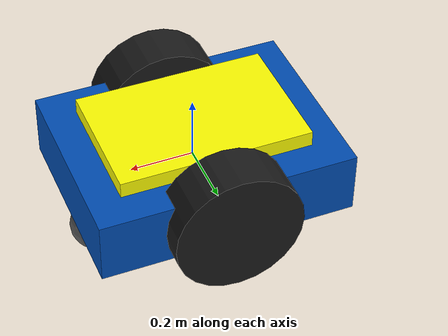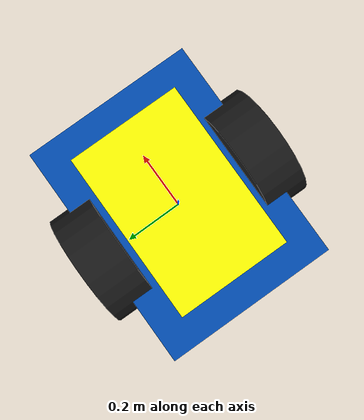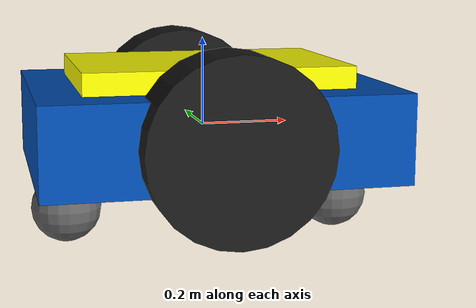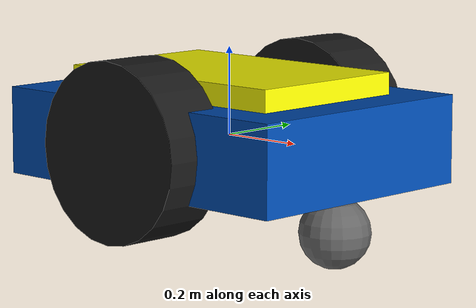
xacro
<?xml version="1.0"?>

<robot xmlns:xacro="http://www.ros.org/wiki/xacro" name="basicmicro_industrial_robot">

  <!-- Xacro arguments with industrial defaults -->
  <xacro:arg name="port" default="/dev/ttyACM0"/>
  <xacro:arg name="baud" default="115200"/>
  <xacro:arg name="address" default="128"/>
  <xacro:arg name="wheel_radius" default="0.2"/>
  <xacro:arg name="wheel_separation" default="0.6"/>
  <xacro:arg name="encoder_counts_per_rev" default="2000"/>
  <xacro:arg name="gear_ratio" default="10.0"/>
  <xacro:arg name="motion_strategy" default="speed_accel"/>
  <xacro:arg name="default_acceleration" default="2000"/>
  <xacro:arg name="buffer_depth" default="8"/>
  <xacro:arg name="encoder_type" default="incremental"/>
  <xacro:arg name="auto_home_on_startup" default="false"/>
  <xacro:arg name="position_limits_enabled" default="true"/>
  <xacro:arg name="max_speed" default="5.0"/>
  <xacro:arg name="max_acceleration" default="2000"/>

  <!-- Industrial Robot Physical Properties -->
  <xacro:property name="wheel_radius" value="$(arg wheel_radius)"/>
  <xacro:property name="wheel_separation" value="$(arg wheel_separation)"/>
  <xacro:property name="wheel_width" value="0.15"/>
  <xacro:property name="wheel_mass" value="5.0"/>

  <!-- Large industrial base platform -->
  <xacro:property name="base_length" value="0.8"/>
  <xacro:property name="base_width" value="0.6"/>
  <xacro:property name="base_height" value="0.2"/>
  <xacro:property name="base_mass" value="50.0"/>

  <!-- Heavy-duty caster wheels (2 for stability) -->
  <xacro:property name="caster_radius" value="0.08"/>
  <xacro:property name="caster_mass" value="2.0"/>

  <!-- Payload platform -->
  <xacro:property name="payload_length" value="0.6"/>
  <xacro:property name="payload_width" value="0.4"/>
  <xacro:property name="payload_height" value="0.05"/>
  <xacro:property name="payload_mass" value="5.0"/>

  <!-- Industrial Materials -->
  <material name="industrial_blue">
    <color rgba="0.0 0.3 0.7 1.0"/>
  </material>

  <material name="industrial_black">
    <color rgba="0.1 0.1 0.1 1.0"/>
  </material>

  <material name="industrial_gray">
    <color rgba="0.4 0.4 0.4 1.0"/>
  </material>

  <material name="industrial_yellow">
    <color rgba="1.0 1.0 0.0 1.0"/>
  </material>

  <!-- Base Link (Heavy-duty platform) -->
  <link name="base_link">
    <visual>
      <geometry>
        <box size="${base_length} ${base_width} ${base_height}"/>
      </geometry>
      <material name="industrial_blue"/>
    </visual>
    <collision>
      <geometry>
        <box size="${base_length} ${base_width} ${base_height}"/>
      </geometry>
    </collision>
    <inertial>
      <mass value="${base_mass}"/>
      <inertia ixx="${base_mass * (base_width*base_width + base_height*base_height) / 12}"
               iyy="${base_mass * (base_length*base_length + base_height*base_height) / 12}"
               izz="${base_mass * (base_length*base_length + base_width*base_width) / 12}"
               ixy="0" ixz="0" iyz="0"/>
    </inertial>
  </link>

  <!-- Payload Platform -->
  <link name="payload_platform">
    <visual>
      <geometry>
        <box size="${payload_length} ${payload_width} ${payload_height}"/>
      </geometry>
      <material name="industrial_yellow"/>
    </visual>
    <collision>
      <geometry>
        <box size="${payload_length} ${payload_width} ${payload_height}"/>
      </geometry>
    </collision>
    <inertial>
      <mass value="${payload_mass}"/>
      <inertia ixx="${payload_mass * (payload_width*payload_width + payload_height*payload_height) / 12}"
               iyy="${payload_mass * (payload_length*payload_length + payload_height*payload_height) / 12}"
               izz="${payload_mass * (payload_length*payload_length + payload_width*payload_width) / 12}"
               ixy="0" ixz="0" iyz="0"/>
    </inertial>
  </link>

  <!-- Left Wheel (Large industrial wheel) -->
  <link name="left_wheel">
    <visual>
      <geometry>
        <cylinder radius="${wheel_radius}" length="${wheel_width}"/>
      </geometry>
      <material name="industrial_black"/>
    </visual>
    <collision>
      <geometry>
        <cylinder radius="${wheel_radius}" length="${wheel_width}"/>
      </geometry>
    </collision>
    <inertial>
      <mass value="${wheel_mass}"/>
      <inertia ixx="${wheel_mass * (3*wheel_radius*wheel_radius + wheel_width*wheel_width) / 12}"
               iyy="${wheel_mass * (3*wheel_radius*wheel_radius + wheel_width*wheel_width) / 12}"
               izz="${wheel_mass * wheel_radius*wheel_radius / 2}"
               ixy="0" ixz="0" iyz="0"/>
    </inertial>
  </link>

  <!-- Right Wheel (Large industrial wheel) -->
  <link name="right_wheel">
    <visual>
      <geometry>
        <cylinder radius="${wheel_radius}" length="${wheel_width}"/>
      </geometry>
      <material name="industrial_black"/>
    </visual>
    <collision>
      <geometry>
        <cylinder radius="${wheel_radius}" length="${wheel_width}"/>
      </geometry>
    </collision>
    <inertial>
      <mass value="${wheel_mass}"/>
      <inertia ixx="${wheel_mass * (3*wheel_radius*wheel_radius + wheel_width*wheel_width) / 12}"
               iyy="${wheel_mass * (3*wheel_radius*wheel_radius + wheel_width*wheel_width) / 12}"
               izz="${wheel_mass * wheel_radius*wheel_radius / 2}"
               ixy="0" ixz="0" iyz="0"/>
    </inertial>
  </link>

  <!-- Front Caster Wheel -->
  <link name="front_caster_wheel">
    <visual>
      <geometry>
        <sphere radius="${caster_radius}"/>
      </geometry>
      <material name="industrial_gray"/>
    </visual>
    <collision>
      <geometry>
        <sphere radius="${caster_radius}"/>
      </geometry>
    </collision>
    <inertial>
      <mass value="${caster_mass}"/>
      <inertia ixx="${2 * caster_mass * caster_radius*caster_radius / 5}"
               iyy="${2 * caster_mass * caster_radius*caster_radius / 5}"
               izz="${2 * caster_mass * caster_radius*caster_radius / 5}"
               ixy="0" ixz="0" iyz="0"/>
    </inertial>
  </link>

  <!-- Rear Caster Wheel -->
  <link name="rear_caster_wheel">
    <visual>
      <geometry>
        <sphere radius="${caster_radius}"/>
      </geometry>
      <material name="industrial_gray"/>
    </visual>
    <collision>
      <geometry>
        <sphere radius="${caster_radius}"/>
      </geometry>
    </collision>
    <inertial>
      <mass value="${caster_mass}"/>
      <inertia ixx="${2 * caster_mass * caster_radius*caster_radius / 5}"
               iyy="${2 * caster_mass * caster_radius*caster_radius / 5}"
               izz="${2 * caster_mass * caster_radius*caster_radius / 5}"
               ixy="0" ixz="0" iyz="0"/>
    </inertial>
  </link>

  <!-- Payload Platform Joint -->
  <joint name="payload_platform_joint" type="fixed">
    <parent link="base_link"/>
    <child link="payload_platform"/>
    <origin xyz="0 0 ${base_height/2 + payload_height/2}" rpy="0 0 0"/>
  </joint>

  <!-- Left Wheel Joint -->
  <joint name="left_wheel_joint" type="continuous">
    <parent link="base_link"/>
    <child link="left_wheel"/>
    <origin xyz="0 ${wheel_separation/2} 0" rpy="${-pi/2} 0 0"/>
    <axis xyz="0 0 1"/>
  </joint>

  <!-- Right Wheel Joint -->
  <joint name="right_wheel_joint" type="continuous">
    <parent link="base_link"/>
    <child link="right_wheel"/>
    <origin xyz="0 ${-wheel_separation/2} 0" rpy="${-pi/2} 0 0"/>
    <axis xyz="0 0 1"/>
  </joint>

  <!-- Front Caster Wheel Joint -->
  <joint name="front_caster_wheel_joint" type="fixed">
    <parent link="base_link"/>
    <child link="front_caster_wheel"/>
    <origin xyz="${base_length/2 - caster_radius} 0 ${-base_height/2 - caster_radius}" rpy="0 0 0"/>
  </joint>

  <!-- Rear Caster Wheel Joint -->
  <joint name="rear_caster_wheel_joint" type="fixed">
    <parent link="base_link"/>
    <child link="rear_caster_wheel"/>
    <origin xyz="${-base_length/2 + caster_radius} 0 ${-base_height/2 - caster_radius}" rpy="0 0 0"/>
  </joint>

  <!-- ros2_control Hardware Interface (Industrial Configuration) -->
  <ros2_control name="BasicmicroIndustrialSystem" type="system">
    <hardware>
      <plugin>basicmicro_ros2/BasicmicroHardwareInterface</plugin>

      <!-- Hardware connection parameters -->
      <param name="port">$(arg port)</param>
      <param name="baud">$(arg baud)</param>
      <param name="address">$(arg address)</param>

      <!-- Robot physical parameters -->
      <param name="wheel_radius">$(arg wheel_radius)</param>
      <param name="wheel_separation">$(arg wheel_separation)</param>
      <param name="encoder_counts_per_rev">$(arg encoder_counts_per_rev)</param>
      <param name="gear_ratio">$(arg gear_ratio)</param>

      <!-- Motion control parameters (industrial settings) -->
      <param name="motion_strategy">$(arg motion_strategy)</param>
      <param name="buffer_depth">$(arg buffer_depth)</param>
      <param name="default_acceleration">$(arg default_acceleration)</param>
      <param name="max_speed">$(arg max_speed)</param>
      <param name="max_acceleration">$(arg max_acceleration)</param>

      <!-- Industrial safety parameters -->
      <param name="encoder_type">$(arg encoder_type)</param>
      <param name="auto_home_on_startup">$(arg auto_home_on_startup)</param>
      <param name="position_limits_enabled">$(arg position_limits_enabled)</param>
      <param name="min_position_left">-5000000</param>
      <param name="max_position_left">5000000</param>
      <param name="min_position_right">-5000000</param>
      <param name="max_position_right">5000000</param>
      <param name="limit_violation_behavior">soft_stop</param>
      <param name="limit_decel_rate">2000</param>

      <!-- Industrial monitoring parameters -->
      <param name="current_monitoring_enabled">true</param>
      <param name="temperature_monitoring_enabled">true</param>
      <param name="voltage_monitoring_enabled">true</param>
      <param name="max_current_threshold">20.0</param>
      <param name="max_temperature_threshold">80.0</param>
      <param name="min_voltage_threshold">22.0</param>
    </hardware>

    <!-- Left Wheel Interface (Industrial velocity limits) -->
    <joint name="left_wheel_joint">
      <command_interface name="velocity">
        <param name="min">-$(arg max_speed)</param>
        <param name="max">$(arg max_speed)</param>
      </command_interface>
      <state_interface name="position"/>
      <state_interface name="velocity"/>
    </joint>

    <!-- Right Wheel Interface (Industrial velocity limits) -->
    <joint name="right_wheel_joint">
      <command_interface name="velocity">
        <param name="min">-$(arg max_speed)</param>
        <param name="max">$(arg max_speed)</param>
      </command_interface>
      <state_interface name="position"/>
      <state_interface name="velocity"/>
    </joint>
  </ros2_control>

  <!-- Gazebo Integration (Industrial Configuration) -->
  <gazebo>
    <plugin filename="libgazebo_ros2_control.so" name="gazebo_ros2_control">
      <parameters>$(find basicmicro_ros2)/config/industrial_controllers.yaml</parameters>
    </plugin>
  </gazebo>

  <!-- Gazebo Industrial Wheel Properties -->
  <gazebo reference="left_wheel">
    <material>Gazebo/Black</material>
    <mu1>1.0</mu1>
    <mu2>1.0</mu2>
    <kp>1000000.0</kp>
    <kd>1.0</kd>
    <fdir1>1 0 0</fdir1>
  </gazebo>

  <gazebo reference="right_wheel">
    <material>Gazebo/Black</material>
    <mu1>1.0</mu1>
    <mu2>1.0</mu2>
    <kp>1000000.0</kp>
    <kd>1.0</kd>
    <fdir1>1 0 0</fdir1>
  </gazebo>

  <gazebo reference="front_caster_wheel">
    <material>Gazebo/Grey</material>
    <mu1>0.1</mu1>
    <mu2>0.1</mu2>
  </gazebo>

  <gazebo reference="rear_caster_wheel">
    <material>Gazebo/Grey</material>
    <mu1>0.1</mu1>
    <mu2>0.1</mu2>
  </gazebo>

  <gazebo reference="payload_platform">
    <material>Gazebo/Yellow</material>
  </gazebo>

</robot>
